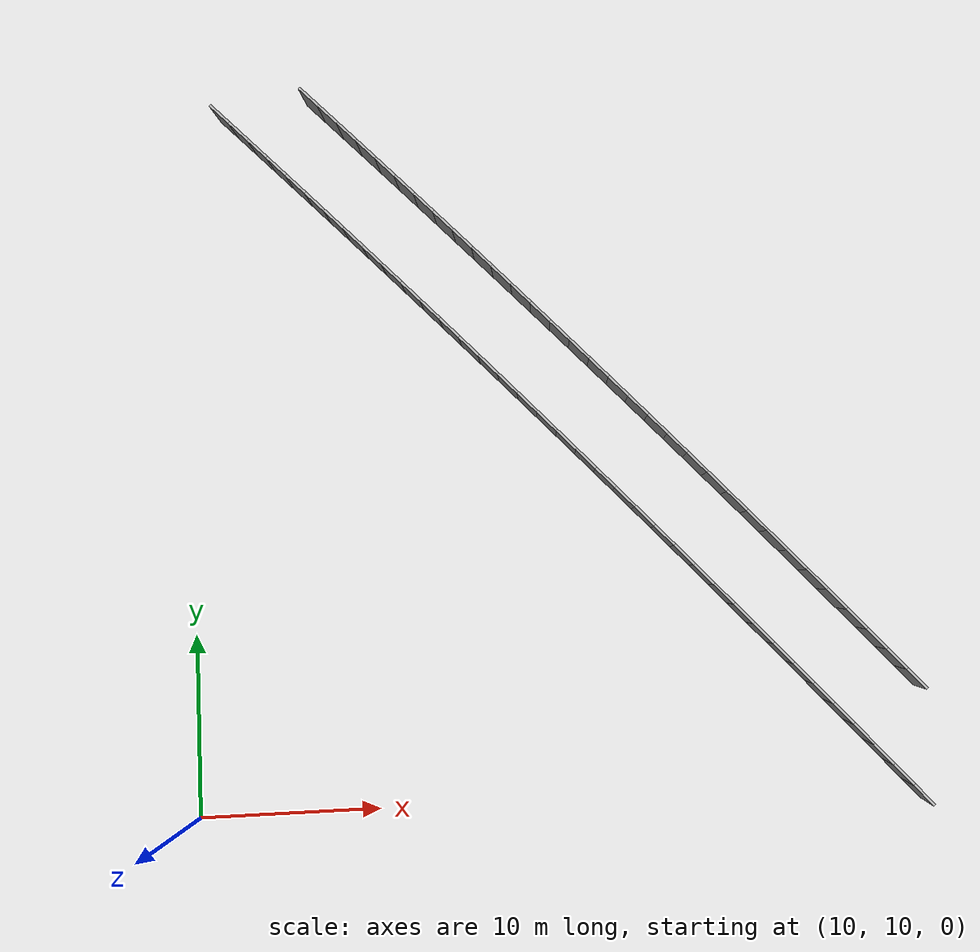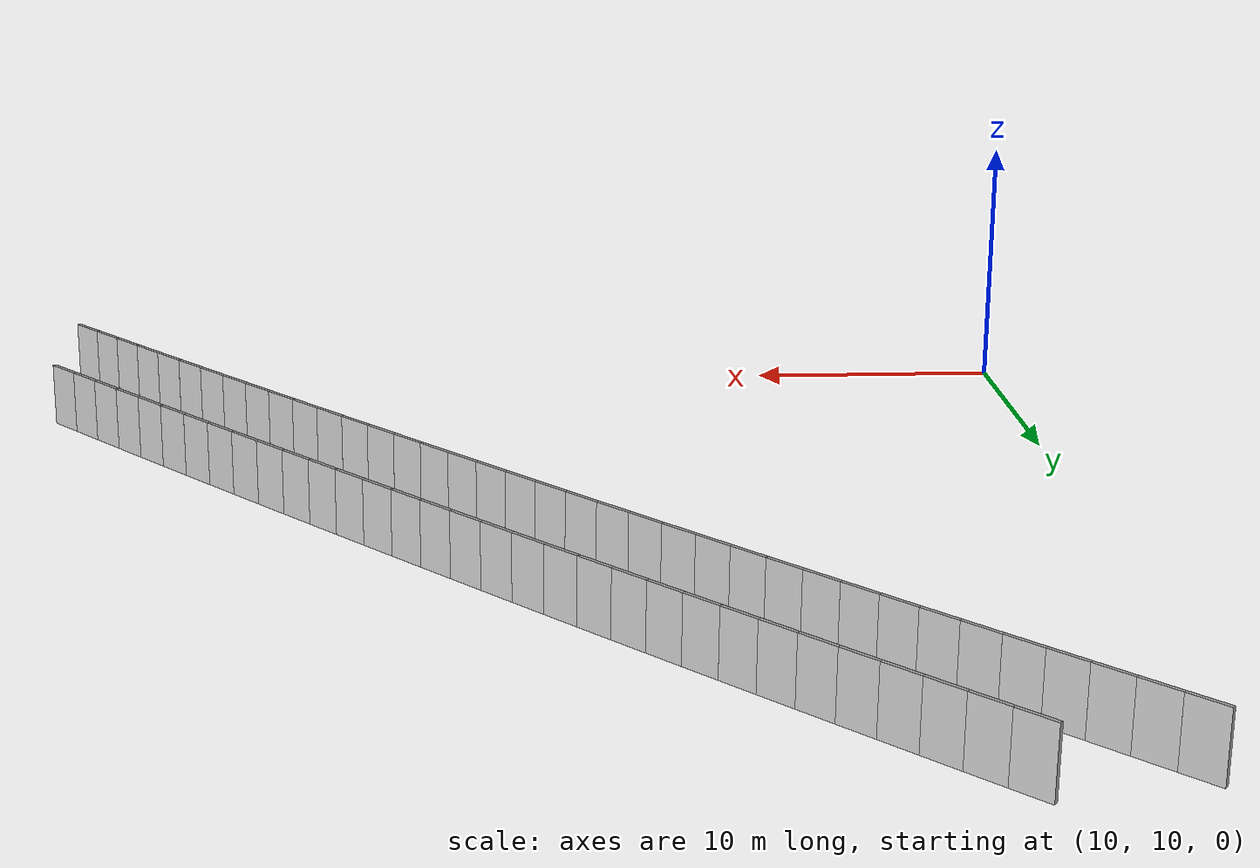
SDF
<?xml version="1.0" ?>
<sdf version="1.6">
  <model name="sps_4040">
    <pose frame="">0 0 0 0 -0 0</pose>
    <static>1</static>
    <self_collide>0</self_collide>
    <allow_auto_disable>0</allow_auto_disable>
    <link name="Wall10377">
      <kinematic>0</kinematic>
      <gravity>1</gravity>
      <self_collide>0</self_collide>
      <collision name="collision">
        <geometry>
          <box>
            <size>1.49638 0.15 2.5</size>
          </box>
        </geometry>
        <pose frame="">0 0 0 0 -0 0</pose>
      </collision>
      <visual name="visual">
        <geometry>
          <box>
            <size>1.49638 0.15 2.5</size>
          </box>
        </geometry>
        <pose frame="">0 0 0 0 -0 0</pose>
        <cast_shadows>1</cast_shadows>
        <transparency>0.0</transparency>
      </visual>
      <pose frame="">49.278 9.73091 1.25 0 -0 2.29178</pose>
    </link>
    <link name="Wall10378">
      <kinematic>0</kinematic>
      <gravity>1</gravity>
      <self_collide>0</self_collide>
      <collision name="collision">
        <geometry>
          <box>
            <size>1.49661 0.15 2.5</size>
          </box>
        </geometry>
        <pose frame="">0 0 0 0 -0 0</pose>
      </collision>
      <visual name="visual">
        <geometry>
          <box>
            <size>1.49661 0.15 2.5</size>
          </box>
        </geometry>
        <pose frame="">0 0 0 0 -0 0</pose>
        <cast_shadows>1</cast_shadows>
        <transparency>0.0</transparency>
      </visual>
      <pose frame="">48.2892 10.8542 1.25 0 -0 2.29343</pose>
    </link>
    <link name="Wall10379">
      <kinematic>0</kinematic>
      <gravity>1</gravity>
      <self_collide>0</self_collide>
      <collision name="collision">
        <geometry>
          <box>
            <size>1.49652 0.15 2.5</size>
          </box>
        </geometry>
        <pose frame="">0 0 0 0 -0 0</pose>
      </collision>
      <visual name="visual">
        <geometry>
          <box>
            <size>1.49652 0.15 2.5</size>
          </box>
        </geometry>
        <pose frame="">0 0 0 0 -0 0</pose>
        <cast_shadows>1</cast_shadows>
        <transparency>0.0</transparency>
      </visual>
      <pose frame="">47.2986 11.976 1.25 0 -0 2.2949</pose>
    </link>
    <link name="Wall10380">
      <kinematic>0</kinematic>
      <gravity>1</gravity>
      <self_collide>0</self_collide>
      <collision name="collision">
        <geometry>
          <box>
            <size>1.4965 0.15 2.5</size>
          </box>
        </geometry>
        <pose frame="">0 0 0 0 -0 0</pose>
      </collision>
      <visual name="visual">
        <geometry>
          <box>
            <size>1.4965 0.15 2.5</size>
          </box>
        </geometry>
        <pose frame="">0 0 0 0 -0 0</pose>
        <cast_shadows>1</cast_shadows>
        <transparency>0.0</transparency>
      </visual>
      <pose frame="">46.3063 13.0962 1.25 0 -0 2.29655</pose>
    </link>
    <link name="Wall10381">
      <kinematic>0</kinematic>
      <gravity>1</gravity>
      <self_collide>0</self_collide>
      <collision name="collision">
        <geometry>
          <box>
            <size>1.49649 0.15 2.5</size>
          </box>
        </geometry>
        <pose frame="">0 0 0 0 -0 0</pose>
      </collision>
      <visual name="visual">
        <geometry>
          <box>
            <size>1.49649 0.15 2.5</size>
          </box>
        </geometry>
        <pose frame="">0 0 0 0 -0 0</pose>
        <cast_shadows>1</cast_shadows>
        <transparency>0.0</transparency>
      </visual>
      <pose frame="">45.3122 14.2148 1.25 0 -0 2.29814</pose>
    </link>
    <link name="Wall10382">
      <kinematic>0</kinematic>
      <gravity>1</gravity>
      <self_collide>0</self_collide>
      <collision name="collision">
        <geometry>
          <box>
            <size>1.49621 0.15 2.5</size>
          </box>
        </geometry>
        <pose frame="">0 0 0 0 -0 0</pose>
      </collision>
      <visual name="visual">
        <geometry>
          <box>
            <size>1.49621 0.15 2.5</size>
          </box>
        </geometry>
        <pose frame="">0 0 0 0 -0 0</pose>
        <cast_shadows>1</cast_shadows>
        <transparency>0.0</transparency>
      </visual>
      <pose frame="">44.3162 15.3316 1.25 0 -0 2.29995</pose>
    </link>
    <link name="Wall10383">
      <kinematic>0</kinematic>
      <gravity>1</gravity>
      <self_collide>0</self_collide>
      <collision name="collision">
        <geometry>
          <box>
            <size>1.49666 0.15 2.5</size>
          </box>
        </geometry>
        <pose frame="">0 0 0 0 -0 0</pose>
      </collision>
      <visual name="visual">
        <geometry>
          <box>
            <size>1.49666 0.15 2.5</size>
          </box>
        </geometry>
        <pose frame="">0 0 0 0 -0 0</pose>
        <cast_shadows>1</cast_shadows>
        <transparency>0.0</transparency>
      </visual>
      <pose frame="">43.3185 16.4469 1.25 0 -0 2.30126</pose>
    </link>
    <link name="Wall10384">
      <kinematic>0</kinematic>
      <gravity>1</gravity>
      <self_collide>0</self_collide>
      <collision name="collision">
        <geometry>
          <box>
            <size>1.49636 0.15 2.5</size>
          </box>
        </geometry>
        <pose frame="">0 0 0 0 -0 0</pose>
      </collision>
      <visual name="visual">
        <geometry>
          <box>
            <size>1.49636 0.15 2.5</size>
          </box>
        </geometry>
        <pose frame="">0 0 0 0 -0 0</pose>
        <cast_shadows>1</cast_shadows>
        <transparency>0.0</transparency>
      </visual>
      <pose frame="">42.3191 17.5608 1.25 0 -0 2.30287</pose>
    </link>
    <link name="Wall10385">
      <kinematic>0</kinematic>
      <gravity>1</gravity>
      <self_collide>0</self_collide>
      <collision name="collision">
        <geometry>
          <box>
            <size>1.49658 0.15 2.5</size>
          </box>
        </geometry>
        <pose frame="">0 0 0 0 -0 0</pose>
      </collision>
      <visual name="visual">
        <geometry>
          <box>
            <size>1.49658 0.15 2.5</size>
          </box>
        </geometry>
        <pose frame="">0 0 0 0 -0 0</pose>
        <cast_shadows>1</cast_shadows>
        <transparency>0.0</transparency>
      </visual>
      <pose frame="">41.318 18.6731 1.25 0 -0 2.30438</pose>
    </link>
    <link name="Wall10386">
      <kinematic>0</kinematic>
      <gravity>1</gravity>
      <self_collide>0</self_collide>
      <collision name="collision">
        <geometry>
          <box>
            <size>1.49655 0.15 2.5</size>
          </box>
        </geometry>
        <pose frame="">0 0 0 0 -0 0</pose>
      </collision>
      <visual name="visual">
        <geometry>
          <box>
            <size>1.49655 0.15 2.5</size>
          </box>
        </geometry>
        <pose frame="">0 0 0 0 -0 0</pose>
        <cast_shadows>1</cast_shadows>
        <transparency>0.0</transparency>
      </visual>
      <pose frame="">40.3151 19.7839 1.25 0 -0 2.30599</pose>
    </link>
    <link name="Wall10387">
      <kinematic>0</kinematic>
      <gravity>1</gravity>
      <self_collide>0</self_collide>
      <collision name="collision">
        <geometry>
          <box>
            <size>1.49646 0.15 2.5</size>
          </box>
        </geometry>
        <pose frame="">0 0 0 0 -0 0</pose>
      </collision>
      <visual name="visual">
        <geometry>
          <box>
            <size>1.49646 0.15 2.5</size>
          </box>
        </geometry>
        <pose frame="">0 0 0 0 -0 0</pose>
        <cast_shadows>1</cast_shadows>
        <transparency>0.0</transparency>
      </visual>
      <pose frame="">39.3104 20.893 1.25 0 -0 2.3077</pose>
    </link>
    <link name="Wall10388">
      <kinematic>0</kinematic>
      <gravity>1</gravity>
      <self_collide>0</self_collide>
      <collision name="collision">
        <geometry>
          <box>
            <size>1.49662 0.15 2.5</size>
          </box>
        </geometry>
        <pose frame="">0 0 0 0 -0 0</pose>
      </collision>
      <visual name="visual">
        <geometry>
          <box>
            <size>1.49662 0.15 2.5</size>
          </box>
        </geometry>
        <pose frame="">0 0 0 0 -0 0</pose>
        <cast_shadows>1</cast_shadows>
        <transparency>0.0</transparency>
      </visual>
      <pose frame="">38.3039 22.0005 1.25 0 -0 2.3092</pose>
    </link>
    <link name="Wall10389">
      <kinematic>0</kinematic>
      <gravity>1</gravity>
      <self_collide>0</self_collide>
      <collision name="collision">
        <geometry>
          <box>
            <size>1.4965 0.15 2.5</size>
          </box>
        </geometry>
        <pose frame="">0 0 0 0 -0 0</pose>
      </collision>
      <visual name="visual">
        <geometry>
          <box>
            <size>1.4965 0.15 2.5</size>
          </box>
        </geometry>
        <pose frame="">0 0 0 0 -0 0</pose>
        <cast_shadows>1</cast_shadows>
        <transparency>0.0</transparency>
      </visual>
      <pose frame="">37.2956 23.1064 1.25 0 -0 2.31093</pose>
    </link>
    <link name="Wall10390">
      <kinematic>0</kinematic>
      <gravity>1</gravity>
      <self_collide>0</self_collide>
      <collision name="collision">
        <geometry>
          <box>
            <size>1.49653 0.15 2.5</size>
          </box>
        </geometry>
        <pose frame="">0 0 0 0 -0 0</pose>
      </collision>
      <visual name="visual">
        <geometry>
          <box>
            <size>1.49653 0.15 2.5</size>
          </box>
        </geometry>
        <pose frame="">0 0 0 0 -0 0</pose>
        <cast_shadows>1</cast_shadows>
        <transparency>0.0</transparency>
      </visual>
      <pose frame="">36.2856 24.2107 1.25 0 -0 2.31235</pose>
    </link>
    <link name="Wall10391">
      <kinematic>0</kinematic>
      <gravity>1</gravity>
      <self_collide>0</self_collide>
      <collision name="collision">
        <geometry>
          <box>
            <size>1.49642 0.15 2.5</size>
          </box>
        </geometry>
        <pose frame="">0 0 0 0 -0 0</pose>
      </collision>
      <visual name="visual">
        <geometry>
          <box>
            <size>1.49642 0.15 2.5</size>
          </box>
        </geometry>
        <pose frame="">0 0 0 0 -0 0</pose>
        <cast_shadows>1</cast_shadows>
        <transparency>0.0</transparency>
      </visual>
      <pose frame="">35.2739 25.3134 1.25 0 -0 2.31402</pose>
    </link>
    <link name="Wall10392">
      <kinematic>0</kinematic>
      <gravity>1</gravity>
      <self_collide>0</self_collide>
      <collision name="collision">
        <geometry>
          <box>
            <size>1.49651 0.15 2.5</size>
          </box>
        </geometry>
        <pose frame="">0 0 0 0 -0 0</pose>
      </collision>
      <visual name="visual">
        <geometry>
          <box>
            <size>1.49651 0.15 2.5</size>
          </box>
        </geometry>
        <pose frame="">0 0 0 0 -0 0</pose>
        <cast_shadows>1</cast_shadows>
        <transparency>0.0</transparency>
      </visual>
      <pose frame="">34.2606 26.4145 1.25 0 -0 2.31546</pose>
    </link>
    <link name="Wall10393">
      <kinematic>0</kinematic>
      <gravity>1</gravity>
      <self_collide>0</self_collide>
      <collision name="collision">
        <geometry>
          <box>
            <size>1.49653 0.15 2.5</size>
          </box>
        </geometry>
        <pose frame="">0 0 0 0 -0 0</pose>
      </collision>
      <visual name="visual">
        <geometry>
          <box>
            <size>1.49653 0.15 2.5</size>
          </box>
        </geometry>
        <pose frame="">0 0 0 0 -0 0</pose>
        <cast_shadows>1</cast_shadows>
        <transparency>0.0</transparency>
      </visual>
      <pose frame="">33.2454 27.514 1.25 0 -0 2.31722</pose>
    </link>
    <link name="Wall10394">
      <kinematic>0</kinematic>
      <gravity>1</gravity>
      <self_collide>0</self_collide>
      <collision name="collision">
        <geometry>
          <box>
            <size>1.49658 0.15 2.5</size>
          </box>
        </geometry>
        <pose frame="">0 0 0 0 -0 0</pose>
      </collision>
      <visual name="visual">
        <geometry>
          <box>
            <size>1.49658 0.15 2.5</size>
          </box>
        </geometry>
        <pose frame="">0 0 0 0 -0 0</pose>
        <cast_shadows>1</cast_shadows>
        <transparency>0.0</transparency>
      </visual>
      <pose frame="">32.2284 28.6119 1.25 0 -0 2.3187</pose>
    </link>
    <link name="Wall10395">
      <kinematic>0</kinematic>
      <gravity>1</gravity>
      <self_collide>0</self_collide>
      <collision name="collision">
        <geometry>
          <box>
            <size>1.49636 0.15 2.5</size>
          </box>
        </geometry>
        <pose frame="">0 0 0 0 -0 0</pose>
      </collision>
      <visual name="visual">
        <geometry>
          <box>
            <size>1.49636 0.15 2.5</size>
          </box>
        </geometry>
        <pose frame="">0 0 0 0 -0 0</pose>
        <cast_shadows>1</cast_shadows>
        <transparency>0.0</transparency>
      </visual>
      <pose frame="">31.2097 29.7082 1.25 0 -0 2.32028</pose>
    </link>
    <link name="Wall10396">
      <kinematic>0</kinematic>
      <gravity>1</gravity>
      <self_collide>0</self_collide>
      <collision name="collision">
        <geometry>
          <box>
            <size>1.49666 0.15 2.5</size>
          </box>
        </geometry>
        <pose frame="">0 0 0 0 -0 0</pose>
      </collision>
      <visual name="visual">
        <geometry>
          <box>
            <size>1.49666 0.15 2.5</size>
          </box>
        </geometry>
        <pose frame="">0 0 0 0 -0 0</pose>
        <cast_shadows>1</cast_shadows>
        <transparency>0.0</transparency>
      </visual>
      <pose frame="">30.1894 30.8029 1.25 0 -0 2.32187</pose>
    </link>
    <link name="Wall10397">
      <kinematic>0</kinematic>
      <gravity>1</gravity>
      <self_collide>0</self_collide>
      <collision name="collision">
        <geometry>
          <box>
            <size>1.49637 0.15 2.5</size>
          </box>
        </geometry>
        <pose frame="">0 0 0 0 -0 0</pose>
      </collision>
      <visual name="visual">
        <geometry>
          <box>
            <size>1.49637 0.15 2.5</size>
          </box>
        </geometry>
        <pose frame="">0 0 0 0 -0 0</pose>
        <cast_shadows>1</cast_shadows>
        <transparency>0.0</transparency>
      </visual>
      <pose frame="">29.1673 31.896 1.25 0 -0 2.3234</pose>
    </link>
    <link name="Wall10398">
      <kinematic>0</kinematic>
      <gravity>1</gravity>
      <self_collide>0</self_collide>
      <collision name="collision">
        <geometry>
          <box>
            <size>1.49651 0.15 2.5</size>
          </box>
        </geometry>
        <pose frame="">0 0 0 0 -0 0</pose>
      </collision>
      <visual name="visual">
        <geometry>
          <box>
            <size>1.49651 0.15 2.5</size>
          </box>
        </geometry>
        <pose frame="">0 0 0 0 -0 0</pose>
        <cast_shadows>1</cast_shadows>
        <transparency>0.0</transparency>
      </visual>
      <pose frame="">28.1435 32.9874 1.25 0 -0 2.3251</pose>
    </link>
    <link name="Wall10399">
      <kinematic>0</kinematic>
      <gravity>1</gravity>
      <self_collide>0</self_collide>
      <collision name="collision">
        <geometry>
          <box>
            <size>1.49652 0.15 2.5</size>
          </box>
        </geometry>
        <pose frame="">0 0 0 0 -0 0</pose>
      </collision>
      <visual name="visual">
        <geometry>
          <box>
            <size>1.49652 0.15 2.5</size>
          </box>
        </geometry>
        <pose frame="">0 0 0 0 -0 0</pose>
        <cast_shadows>1</cast_shadows>
        <transparency>0.0</transparency>
      </visual>
      <pose frame="">27.1179 34.0772 1.25 0 -0 2.3266</pose>
    </link>
    <link name="Wall10400">
      <kinematic>0</kinematic>
      <gravity>1</gravity>
      <self_collide>0</self_collide>
      <collision name="collision">
        <geometry>
          <box>
            <size>1.49636 0.15 2.5</size>
          </box>
        </geometry>
        <pose frame="">0 0 0 0 -0 0</pose>
      </collision>
      <visual name="visual">
        <geometry>
          <box>
            <size>1.49636 0.15 2.5</size>
          </box>
        </geometry>
        <pose frame="">0 0 0 0 -0 0</pose>
        <cast_shadows>1</cast_shadows>
        <transparency>0.0</transparency>
      </visual>
      <pose frame="">26.0905 35.1653 1.25 0 -0 2.32833</pose>
    </link>
    <link name="Wall10401">
      <kinematic>0</kinematic>
      <gravity>1</gravity>
      <self_collide>0</self_collide>
      <collision name="collision">
        <geometry>
          <box>
            <size>1.49674 0.15 2.5</size>
          </box>
        </geometry>
        <pose frame="">0 0 0 0 -0 0</pose>
      </collision>
      <visual name="visual">
        <geometry>
          <box>
            <size>1.49674 0.15 2.5</size>
          </box>
        </geometry>
        <pose frame="">0 0 0 0 -0 0</pose>
        <cast_shadows>1</cast_shadows>
        <transparency>0.0</transparency>
      </visual>
      <pose frame="">25.0615 36.2519 1.25 0 -0 2.32972</pose>
    </link>
    <link name="Wall10402">
      <kinematic>0</kinematic>
      <gravity>1</gravity>
      <self_collide>0</self_collide>
      <collision name="collision">
        <geometry>
          <box>
            <size>1.49646 0.15 2.5</size>
          </box>
        </geometry>
        <pose frame="">0 0 0 0 -0 0</pose>
      </collision>
      <visual name="visual">
        <geometry>
          <box>
            <size>1.49646 0.15 2.5</size>
          </box>
        </geometry>
        <pose frame="">0 0 0 0 -0 0</pose>
        <cast_shadows>1</cast_shadows>
        <transparency>0.0</transparency>
      </visual>
      <pose frame="">24.0307 37.3369 1.25 0 -0 2.33142</pose>
    </link>
    <link name="Wall10403">
      <kinematic>0</kinematic>
      <gravity>1</gravity>
      <self_collide>0</self_collide>
      <collision name="collision">
        <geometry>
          <box>
            <size>1.49662 0.15 2.5</size>
          </box>
        </geometry>
        <pose frame="">0 0 0 0 -0 0</pose>
      </collision>
      <visual name="visual">
        <geometry>
          <box>
            <size>1.49662 0.15 2.5</size>
          </box>
        </geometry>
        <pose frame="">0 0 0 0 -0 0</pose>
        <cast_shadows>1</cast_shadows>
        <transparency>0.0</transparency>
      </visual>
      <pose frame="">22.9982 38.4202 1.25 0 -0 2.33295</pose>
    </link>
    <link name="Wall10404">
      <kinematic>0</kinematic>
      <gravity>1</gravity>
      <self_collide>0</self_collide>
      <collision name="collision">
        <geometry>
          <box>
            <size>1.49661 0.15 2.5</size>
          </box>
        </geometry>
        <pose frame="">0 0 0 0 -0 0</pose>
      </collision>
      <visual name="visual">
        <geometry>
          <box>
            <size>1.49661 0.15 2.5</size>
          </box>
        </geometry>
        <pose frame="">0 0 0 0 -0 0</pose>
        <cast_shadows>1</cast_shadows>
        <transparency>0.0</transparency>
      </visual>
      <pose frame="">21.964 39.502 1.25 0 -0 2.33448</pose>
    </link>
    <link name="Wall10405">
      <kinematic>0</kinematic>
      <gravity>1</gravity>
      <self_collide>0</self_collide>
      <collision name="collision">
        <geometry>
          <box>
            <size>1.49656 0.15 2.5</size>
          </box>
        </geometry>
        <pose frame="">0 0 0 0 -0 0</pose>
      </collision>
      <visual name="visual">
        <geometry>
          <box>
            <size>1.49656 0.15 2.5</size>
          </box>
        </geometry>
        <pose frame="">0 0 0 0 -0 0</pose>
        <cast_shadows>1</cast_shadows>
        <transparency>0.0</transparency>
      </visual>
      <pose frame="">20.928 40.5821 1.25 0 -0 2.33615</pose>
    </link>
    <link name="Wall10406">
      <kinematic>0</kinematic>
      <gravity>1</gravity>
      <self_collide>0</self_collide>
      <collision name="collision">
        <geometry>
          <box>
            <size>1.49634 0.15 2.5</size>
          </box>
        </geometry>
        <pose frame="">0 0 0 0 -0 0</pose>
      </collision>
      <visual name="visual">
        <geometry>
          <box>
            <size>1.49634 0.15 2.5</size>
          </box>
        </geometry>
        <pose frame="">0 0 0 0 -0 0</pose>
        <cast_shadows>1</cast_shadows>
        <transparency>0.0</transparency>
      </visual>
      <pose frame="">19.8904 41.6604 1.25 0 -0 2.33776</pose>
    </link>
    <link name="Wall10407">
      <kinematic>0</kinematic>
      <gravity>1</gravity>
      <self_collide>0</self_collide>
      <collision name="collision">
        <geometry>
          <box>
            <size>1.49656 0.15 2.5</size>
          </box>
        </geometry>
        <pose frame="">0 0 0 0 -0 0</pose>
      </collision>
      <visual name="visual">
        <geometry>
          <box>
            <size>1.49656 0.15 2.5</size>
          </box>
        </geometry>
        <pose frame="">0 0 0 0 -0 0</pose>
        <cast_shadows>1</cast_shadows>
        <transparency>0.0</transparency>
      </visual>
      <pose frame="">18.8512 42.7371 1.25 0 -0 2.33927</pose>
    </link>
    <link name="Wall10408">
      <kinematic>0</kinematic>
      <gravity>1</gravity>
      <self_collide>0</self_collide>
      <collision name="collision">
        <geometry>
          <box>
            <size>1.49643 0.15 2.5</size>
          </box>
        </geometry>
        <pose frame="">0 0 0 0 -0 0</pose>
      </collision>
      <visual name="visual">
        <geometry>
          <box>
            <size>1.49643 0.15 2.5</size>
          </box>
        </geometry>
        <pose frame="">0 0 0 0 -0 0</pose>
        <cast_shadows>1</cast_shadows>
        <transparency>0.0</transparency>
      </visual>
      <pose frame="">17.8102 43.8122 1.25 0 -0 2.34088</pose>
    </link>
    <link name="Wall10409">
      <kinematic>0</kinematic>
      <gravity>1</gravity>
      <self_collide>0</self_collide>
      <collision name="collision">
        <geometry>
          <box>
            <size>1.4964 0.15 2.5</size>
          </box>
        </geometry>
        <pose frame="">0 0 0 0 -0 0</pose>
      </collision>
      <visual name="visual">
        <geometry>
          <box>
            <size>1.4964 0.15 2.5</size>
          </box>
        </geometry>
        <pose frame="">0 0 0 0 -0 0</pose>
        <cast_shadows>1</cast_shadows>
        <transparency>0.0</transparency>
      </visual>
      <pose frame="">16.7674 44.8855 1.25 0 -0 2.34261</pose>
    </link>
    <link name="Wall10410">
      <kinematic>0</kinematic>
      <gravity>1</gravity>
      <self_collide>0</self_collide>
      <collision name="collision">
        <geometry>
          <box>
            <size>1.49658 0.15 2.5</size>
          </box>
        </geometry>
        <pose frame="">0 0 0 0 -0 0</pose>
      </collision>
      <visual name="visual">
        <geometry>
          <box>
            <size>1.49658 0.15 2.5</size>
          </box>
        </geometry>
        <pose frame="">0 0 0 0 -0 0</pose>
        <cast_shadows>1</cast_shadows>
        <transparency>0.0</transparency>
      </visual>
      <pose frame="">15.723 45.9572 1.25 0 -0 2.34408</pose>
    </link>
    <link name="Wall10411">
      <kinematic>0</kinematic>
      <gravity>1</gravity>
      <self_collide>0</self_collide>
      <collision name="collision">
        <geometry>
          <box>
            <size>1.4966 0.15 2.5</size>
          </box>
        </geometry>
        <pose frame="">0 0 0 0 -0 0</pose>
      </collision>
      <visual name="visual">
        <geometry>
          <box>
            <size>1.4966 0.15 2.5</size>
          </box>
        </geometry>
        <pose frame="">0 0 0 0 -0 0</pose>
        <cast_shadows>1</cast_shadows>
        <transparency>0.0</transparency>
      </visual>
      <pose frame="">14.6768 47.0274 1.25 0 -0 2.34561</pose>
    </link>
    <link name="Wall10412">
      <kinematic>0</kinematic>
      <gravity>1</gravity>
      <self_collide>0</self_collide>
      <collision name="collision">
        <geometry>
          <box>
            <size>1.49649 0.15 2.5</size>
          </box>
        </geometry>
        <pose frame="">0 0 0 0 -0 0</pose>
      </collision>
      <visual name="visual">
        <geometry>
          <box>
            <size>1.49649 0.15 2.5</size>
          </box>
        </geometry>
        <pose frame="">0 0 0 0 -0 0</pose>
        <cast_shadows>1</cast_shadows>
        <transparency>0.0</transparency>
      </visual>
      <pose frame="">13.629 48.0959 1.25 0 -0 2.34723</pose>
    </link>
    <link name="Wall10413">
      <kinematic>0</kinematic>
      <gravity>1</gravity>
      <self_collide>0</self_collide>
      <collision name="collision">
        <geometry>
          <box>
            <size>1.49638 0.15 2.5</size>
          </box>
        </geometry>
        <pose frame="">0 0 0 0 -0 0</pose>
      </collision>
      <visual name="visual">
        <geometry>
          <box>
            <size>1.49638 0.15 2.5</size>
          </box>
        </geometry>
        <pose frame="">0 0 0 0 -0 0</pose>
        <cast_shadows>1</cast_shadows>
        <transparency>0.0</transparency>
      </visual>
      <pose frame="">12.5795 49.1626 1.25 0 -0 2.3489</pose>
    </link>
    <link name="Wall10977">
      <kinematic>0</kinematic>
      <gravity>1</gravity>
      <self_collide>0</self_collide>
      <collision name="collision">
        <geometry>
          <box>
            <size>1.50316 0.15 2.5</size>
          </box>
        </geometry>
        <pose frame="">0 0 0 0 -0 0</pose>
      </collision>
      <visual name="visual">
        <geometry>
          <box>
            <size>1.50316 0.15 2.5</size>
          </box>
        </geometry>
        <pose frame="">0 0 0 0 -0 0</pose>
        <cast_shadows>1</cast_shadows>
        <transparency>0.0</transparency>
      </visual>
      <pose frame="">49.4026 15.8439 1.25 0 -0 2.29652</pose>
    </link>
    <link name="Wall10978">
      <kinematic>0</kinematic>
      <gravity>1</gravity>
      <self_collide>0</self_collide>
      <collision name="collision">
        <geometry>
          <box>
            <size>1.50302 0.15 2.5</size>
          </box>
        </geometry>
        <pose frame="">0 0 0 0 -0 0</pose>
      </collision>
      <visual name="visual">
        <geometry>
          <box>
            <size>1.50302 0.15 2.5</size>
          </box>
        </geometry>
        <pose frame="">0 0 0 0 -0 0</pose>
        <cast_shadows>1</cast_shadows>
        <transparency>0.0</transparency>
      </visual>
      <pose frame="">48.4041 16.9674 1.25 0 -0 2.29819</pose>
    </link>
    <link name="Wall10979">
      <kinematic>0</kinematic>
      <gravity>1</gravity>
      <self_collide>0</self_collide>
      <collision name="collision">
        <geometry>
          <box>
            <size>1.50302 0.15 2.5</size>
          </box>
        </geometry>
        <pose frame="">0 0 0 0 -0 0</pose>
      </collision>
      <visual name="visual">
        <geometry>
          <box>
            <size>1.50302 0.15 2.5</size>
          </box>
        </geometry>
        <pose frame="">0 0 0 0 -0 0</pose>
        <cast_shadows>1</cast_shadows>
        <transparency>0.0</transparency>
      </visual>
      <pose frame="">47.404 18.0893 1.25 0 -0 2.2996</pose>
    </link>
    <link name="Wall10980">
      <kinematic>0</kinematic>
      <gravity>1</gravity>
      <self_collide>0</self_collide>
      <collision name="collision">
        <geometry>
          <box>
            <size>1.50314 0.15 2.5</size>
          </box>
        </geometry>
        <pose frame="">0 0 0 0 -0 0</pose>
      </collision>
      <visual name="visual">
        <geometry>
          <box>
            <size>1.50314 0.15 2.5</size>
          </box>
        </geometry>
        <pose frame="">0 0 0 0 -0 0</pose>
        <cast_shadows>1</cast_shadows>
        <transparency>0.0</transparency>
      </visual>
      <pose frame="">46.402 19.2097 1.25 0 -0 2.30133</pose>
    </link>
    <link name="Wall10981">
      <kinematic>0</kinematic>
      <gravity>1</gravity>
      <self_collide>0</self_collide>
      <collision name="collision">
        <geometry>
          <box>
            <size>1.50306 0.15 2.5</size>
          </box>
        </geometry>
        <pose frame="">0 0 0 0 -0 0</pose>
      </collision>
      <visual name="visual">
        <geometry>
          <box>
            <size>1.50306 0.15 2.5</size>
          </box>
        </geometry>
        <pose frame="">0 0 0 0 -0 0</pose>
        <cast_shadows>1</cast_shadows>
        <transparency>0.0</transparency>
      </visual>
      <pose frame="">45.3982 20.3285 1.25 0 -0 2.30285</pose>
    </link>
    <link name="Wall10982">
      <kinematic>0</kinematic>
      <gravity>1</gravity>
      <self_collide>0</self_collide>
      <collision name="collision">
        <geometry>
          <box>
            <size>1.50311 0.15 2.5</size>
          </box>
        </geometry>
        <pose frame="">0 0 0 0 -0 0</pose>
      </collision>
      <visual name="visual">
        <geometry>
          <box>
            <size>1.50311 0.15 2.5</size>
          </box>
        </geometry>
        <pose frame="">0 0 0 0 -0 0</pose>
        <cast_shadows>1</cast_shadows>
        <transparency>0.0</transparency>
      </visual>
      <pose frame="">44.3926 21.4457 1.25 0 -0 2.3044</pose>
    </link>
    <link name="Wall10983">
      <kinematic>0</kinematic>
      <gravity>1</gravity>
      <self_collide>0</self_collide>
      <collision name="collision">
        <geometry>
          <box>
            <size>1.50302 0.15 2.5</size>
          </box>
        </geometry>
        <pose frame="">0 0 0 0 -0 0</pose>
      </collision>
      <visual name="visual">
        <geometry>
          <box>
            <size>1.50302 0.15 2.5</size>
          </box>
        </geometry>
        <pose frame="">0 0 0 0 -0 0</pose>
        <cast_shadows>1</cast_shadows>
        <transparency>0.0</transparency>
      </visual>
      <pose frame="">43.3853 22.5613 1.25 0 -0 2.30604</pose>
    </link>
    <link name="Wall10984">
      <kinematic>0</kinematic>
      <gravity>1</gravity>
      <self_collide>0</self_collide>
      <collision name="collision">
        <geometry>
          <box>
            <size>1.50299 0.15 2.5</size>
          </box>
        </geometry>
        <pose frame="">0 0 0 0 -0 0</pose>
      </collision>
      <visual name="visual">
        <geometry>
          <box>
            <size>1.50299 0.15 2.5</size>
          </box>
        </geometry>
        <pose frame="">0 0 0 0 -0 0</pose>
        <cast_shadows>1</cast_shadows>
        <transparency>0.0</transparency>
      </visual>
      <pose frame="">42.3762 23.6752 1.25 0 -0 2.3077</pose>
    </link>
    <link name="Wall10985">
      <kinematic>0</kinematic>
      <gravity>1</gravity>
      <self_collide>0</self_collide>
      <collision name="collision">
        <geometry>
          <box>
            <size>1.50309 0.15 2.5</size>
          </box>
        </geometry>
        <pose frame="">0 0 0 0 -0 0</pose>
      </collision>
      <visual name="visual">
        <geometry>
          <box>
            <size>1.50309 0.15 2.5</size>
          </box>
        </geometry>
        <pose frame="">0 0 0 0 -0 0</pose>
        <cast_shadows>1</cast_shadows>
        <transparency>0.0</transparency>
      </visual>
      <pose frame="">41.3653 24.7875 1.25 0 -0 2.30923</pose>
    </link>
    <link name="Wall10986">
      <kinematic>0</kinematic>
      <gravity>1</gravity>
      <self_collide>0</self_collide>
      <collision name="collision">
        <geometry>
          <box>
            <size>1.5032 0.15 2.5</size>
          </box>
        </geometry>
        <pose frame="">0 0 0 0 -0 0</pose>
      </collision>
      <visual name="visual">
        <geometry>
          <box>
            <size>1.5032 0.15 2.5</size>
          </box>
        </geometry>
        <pose frame="">0 0 0 0 -0 0</pose>
        <cast_shadows>1</cast_shadows>
        <transparency>0.0</transparency>
      </visual>
      <pose frame="">40.3527 25.8983 1.25 0 -0 2.31082</pose>
    </link>
    <link name="Wall10987">
      <kinematic>0</kinematic>
      <gravity>1</gravity>
      <self_collide>0</self_collide>
      <collision name="collision">
        <geometry>
          <box>
            <size>1.50287 0.15 2.5</size>
          </box>
        </geometry>
        <pose frame="">0 0 0 0 -0 0</pose>
      </collision>
      <visual name="visual">
        <geometry>
          <box>
            <size>1.50287 0.15 2.5</size>
          </box>
        </geometry>
        <pose frame="">0 0 0 0 -0 0</pose>
        <cast_shadows>1</cast_shadows>
        <transparency>0.0</transparency>
      </visual>
      <pose frame="">39.3382 27.0074 1.25 0 -0 2.31244</pose>
    </link>
    <link name="Wall10988">
      <kinematic>0</kinematic>
      <gravity>1</gravity>
      <self_collide>0</self_collide>
      <collision name="collision">
        <geometry>
          <box>
            <size>1.50308 0.15 2.5</size>
          </box>
        </geometry>
        <pose frame="">0 0 0 0 -0 0</pose>
      </collision>
      <visual name="visual">
        <geometry>
          <box>
            <size>1.50308 0.15 2.5</size>
          </box>
        </geometry>
        <pose frame="">0 0 0 0 -0 0</pose>
        <cast_shadows>1</cast_shadows>
        <transparency>0.0</transparency>
      </visual>
      <pose frame="">38.3222 28.1149 1.25 0 -0 2.31392</pose>
    </link>
    <link name="Wall10989">
      <kinematic>0</kinematic>
      <gravity>1</gravity>
      <self_collide>0</self_collide>
      <collision name="collision">
        <geometry>
          <box>
            <size>1.50315 0.15 2.5</size>
          </box>
        </geometry>
        <pose frame="">0 0 0 0 -0 0</pose>
      </collision>
      <visual name="visual">
        <geometry>
          <box>
            <size>1.50315 0.15 2.5</size>
          </box>
        </geometry>
        <pose frame="">0 0 0 0 -0 0</pose>
        <cast_shadows>1</cast_shadows>
        <transparency>0.0</transparency>
      </visual>
      <pose frame="">37.3043 29.2209 1.25 0 -0 2.31553</pose>
    </link>
    <link name="Wall10990">
      <kinematic>0</kinematic>
      <gravity>1</gravity>
      <self_collide>0</self_collide>
      <collision name="collision">
        <geometry>
          <box>
            <size>1.50306 0.15 2.5</size>
          </box>
        </geometry>
        <pose frame="">0 0 0 0 -0 0</pose>
      </collision>
      <visual name="visual">
        <geometry>
          <box>
            <size>1.50306 0.15 2.5</size>
          </box>
        </geometry>
        <pose frame="">0 0 0 0 -0 0</pose>
        <cast_shadows>1</cast_shadows>
        <transparency>0.0</transparency>
      </visual>
      <pose frame="">36.2847 30.3253 1.25 0 -0 2.31708</pose>
    </link>
    <link name="Wall10991">
      <kinematic>0</kinematic>
      <gravity>1</gravity>
      <self_collide>0</self_collide>
      <collision name="collision">
        <geometry>
          <box>
            <size>1.50309 0.15 2.5</size>
          </box>
        </geometry>
        <pose frame="">0 0 0 0 -0 0</pose>
      </collision>
      <visual name="visual">
        <geometry>
          <box>
            <size>1.50309 0.15 2.5</size>
          </box>
        </geometry>
        <pose frame="">0 0 0 0 -0 0</pose>
        <cast_shadows>1</cast_shadows>
        <transparency>0.0</transparency>
      </visual>
      <pose frame="">35.2632 31.428 1.25 0 -0 2.31883</pose>
    </link>
    <link name="Wall10992">
      <kinematic>0</kinematic>
      <gravity>1</gravity>
      <self_collide>0</self_collide>
      <collision name="collision">
        <geometry>
          <box>
            <size>1.50301 0.15 2.5</size>
          </box>
        </geometry>
        <pose frame="">0 0 0 0 -0 0</pose>
      </collision>
      <visual name="visual">
        <geometry>
          <box>
            <size>1.50301 0.15 2.5</size>
          </box>
        </geometry>
        <pose frame="">0 0 0 0 -0 0</pose>
        <cast_shadows>1</cast_shadows>
        <transparency>0.0</transparency>
      </visual>
      <pose frame="">34.24 32.529 1.25 0 -0 2.32032</pose>
    </link>
    <link name="Wall10993">
      <kinematic>0</kinematic>
      <gravity>1</gravity>
      <self_collide>0</self_collide>
      <collision name="collision">
        <geometry>
          <box>
            <size>1.50318 0.15 2.5</size>
          </box>
        </geometry>
        <pose frame="">0 0 0 0 -0 0</pose>
      </collision>
      <visual name="visual">
        <geometry>
          <box>
            <size>1.50318 0.15 2.5</size>
          </box>
        </geometry>
        <pose frame="">0 0 0 0 -0 0</pose>
        <cast_shadows>1</cast_shadows>
        <transparency>0.0</transparency>
      </visual>
      <pose frame="">33.2151 33.6285 1.25 0 -0 2.32188</pose>
    </link>
    <link name="Wall10994">
      <kinematic>0</kinematic>
      <gravity>1</gravity>
      <self_collide>0</self_collide>
      <collision name="collision">
        <geometry>
          <box>
            <size>1.50302 0.15 2.5</size>
          </box>
        </geometry>
        <pose frame="">0 0 0 0 -0 0</pose>
      </collision>
      <visual name="visual">
        <geometry>
          <box>
            <size>1.50302 0.15 2.5</size>
          </box>
        </geometry>
        <pose frame="">0 0 0 0 -0 0</pose>
        <cast_shadows>1</cast_shadows>
        <transparency>0.0</transparency>
      </visual>
      <pose frame="">32.1885 34.7264 1.25 0 -0 2.32343</pose>
    </link>
    <link name="Wall10995">
      <kinematic>0</kinematic>
      <gravity>1</gravity>
      <self_collide>0</self_collide>
      <collision name="collision">
        <geometry>
          <box>
            <size>1.50303 0.15 2.5</size>
          </box>
        </geometry>
        <pose frame="">0 0 0 0 -0 0</pose>
      </collision>
      <visual name="visual">
        <geometry>
          <box>
            <size>1.50303 0.15 2.5</size>
          </box>
        </geometry>
        <pose frame="">0 0 0 0 -0 0</pose>
        <cast_shadows>1</cast_shadows>
        <transparency>0.0</transparency>
      </visual>
      <pose frame="">31.1602 35.8226 1.25 0 -0 2.32503</pose>
    </link>
    <link name="Wall10996">
      <kinematic>0</kinematic>
      <gravity>1</gravity>
      <self_collide>0</self_collide>
      <collision name="collision">
        <geometry>
          <box>
            <size>1.50295 0.15 2.5</size>
          </box>
        </geometry>
        <pose frame="">0 0 0 0 -0 0</pose>
      </collision>
      <visual name="visual">
        <geometry>
          <box>
            <size>1.50295 0.15 2.5</size>
          </box>
        </geometry>
        <pose frame="">0 0 0 0 -0 0</pose>
        <cast_shadows>1</cast_shadows>
        <transparency>0.0</transparency>
      </visual>
      <pose frame="">30.1301 36.9171 1.25 0 -0 2.32676</pose>
    </link>
    <link name="Wall10997">
      <kinematic>0</kinematic>
      <gravity>1</gravity>
      <self_collide>0</self_collide>
      <collision name="collision">
        <geometry>
          <box>
            <size>1.50319 0.15 2.5</size>
          </box>
        </geometry>
        <pose frame="">0 0 0 0 -0 0</pose>
      </collision>
      <visual name="visual">
        <geometry>
          <box>
            <size>1.50319 0.15 2.5</size>
          </box>
        </geometry>
        <pose frame="">0 0 0 0 -0 0</pose>
        <cast_shadows>1</cast_shadows>
        <transparency>0.0</transparency>
      </visual>
      <pose frame="">29.0983 38.01 1.25 0 -0 2.32823</pose>
    </link>
    <link name="Wall10998">
      <kinematic>0</kinematic>
      <gravity>1</gravity>
      <self_collide>0</self_collide>
      <collision name="collision">
        <geometry>
          <box>
            <size>1.50313 0.15 2.5</size>
          </box>
        </geometry>
        <pose frame="">0 0 0 0 -0 0</pose>
      </collision>
      <visual name="visual">
        <geometry>
          <box>
            <size>1.50313 0.15 2.5</size>
          </box>
        </geometry>
        <pose frame="">0 0 0 0 -0 0</pose>
        <cast_shadows>1</cast_shadows>
        <transparency>0.0</transparency>
      </visual>
      <pose frame="">28.0647 39.1014 1.25 0 -0 2.32978</pose>
    </link>
    <link name="Wall10999">
      <kinematic>0</kinematic>
      <gravity>1</gravity>
      <self_collide>0</self_collide>
      <collision name="collision">
        <geometry>
          <box>
            <size>1.50306 0.15 2.5</size>
          </box>
        </geometry>
        <pose frame="">0 0 0 0 -0 0</pose>
      </collision>
      <visual name="visual">
        <geometry>
          <box>
            <size>1.50306 0.15 2.5</size>
          </box>
        </geometry>
        <pose frame="">0 0 0 0 -0 0</pose>
        <cast_shadows>1</cast_shadows>
        <transparency>0.0</transparency>
      </visual>
      <pose frame="">27.0293 40.1911 1.25 0 -0 2.33144</pose>
    </link>
    <link name="Wall11000">
      <kinematic>0</kinematic>
      <gravity>1</gravity>
      <self_collide>0</self_collide>
      <collision name="collision">
        <geometry>
          <box>
            <size>1.50301 0.15 2.5</size>
          </box>
        </geometry>
        <pose frame="">0 0 0 0 -0 0</pose>
      </collision>
      <visual name="visual">
        <geometry>
          <box>
            <size>1.50301 0.15 2.5</size>
          </box>
        </geometry>
        <pose frame="">0 0 0 0 -0 0</pose>
        <cast_shadows>1</cast_shadows>
        <transparency>0.0</transparency>
      </visual>
      <pose frame="">25.9924 41.2791 1.25 0 -0 2.33293</pose>
    </link>
    <link name="Wall11001">
      <kinematic>0</kinematic>
      <gravity>1</gravity>
      <self_collide>0</self_collide>
      <collision name="collision">
        <geometry>
          <box>
            <size>1.50308 0.15 2.5</size>
          </box>
        </geometry>
        <pose frame="">0 0 0 0 -0 0</pose>
      </collision>
      <visual name="visual">
        <geometry>
          <box>
            <size>1.50308 0.15 2.5</size>
          </box>
        </geometry>
        <pose frame="">0 0 0 0 -0 0</pose>
        <cast_shadows>1</cast_shadows>
        <transparency>0.0</transparency>
      </visual>
      <pose frame="">24.9537 42.3655 1.25 0 -0 2.33457</pose>
    </link>
    <link name="Wall11002">
      <kinematic>0</kinematic>
      <gravity>1</gravity>
      <self_collide>0</self_collide>
      <collision name="collision">
        <geometry>
          <box>
            <size>1.50316 0.15 2.5</size>
          </box>
        </geometry>
        <pose frame="">0 0 0 0 -0 0</pose>
      </collision>
      <visual name="visual">
        <geometry>
          <box>
            <size>1.50316 0.15 2.5</size>
          </box>
        </geometry>
        <pose frame="">0 0 0 0 -0 0</pose>
        <cast_shadows>1</cast_shadows>
        <transparency>0.0</transparency>
      </visual>
      <pose frame="">23.9132 43.4503 1.25 0 -0 2.33615</pose>
    </link>
    <link name="Wall11003">
      <kinematic>0</kinematic>
      <gravity>1</gravity>
      <self_collide>0</self_collide>
      <collision name="collision">
        <geometry>
          <box>
            <size>1.50303 0.15 2.5</size>
          </box>
        </geometry>
        <pose frame="">0 0 0 0 -0 0</pose>
      </collision>
      <visual name="visual">
        <geometry>
          <box>
            <size>1.50303 0.15 2.5</size>
          </box>
        </geometry>
        <pose frame="">0 0 0 0 -0 0</pose>
        <cast_shadows>1</cast_shadows>
        <transparency>0.0</transparency>
      </visual>
      <pose frame="">22.871 44.5334 1.25 0 -0 2.33776</pose>
    </link>
    <link name="Wall11004">
      <kinematic>0</kinematic>
      <gravity>1</gravity>
      <self_collide>0</self_collide>
      <collision name="collision">
        <geometry>
          <box>
            <size>1.50312 0.15 2.5</size>
          </box>
        </geometry>
        <pose frame="">0 0 0 0 -0 0</pose>
      </collision>
      <visual name="visual">
        <geometry>
          <box>
            <size>1.50312 0.15 2.5</size>
          </box>
        </geometry>
        <pose frame="">0 0 0 0 -0 0</pose>
        <cast_shadows>1</cast_shadows>
        <transparency>0.0</transparency>
      </visual>
      <pose frame="">21.8271 45.6149 1.25 0 -0 2.33917</pose>
    </link>
    <link name="Wall11005">
      <kinematic>0</kinematic>
      <gravity>1</gravity>
      <self_collide>0</self_collide>
      <collision name="collision">
        <geometry>
          <box>
            <size>1.50304 0.15 2.5</size>
          </box>
        </geometry>
        <pose frame="">0 0 0 0 -0 0</pose>
      </collision>
      <visual name="visual">
        <geometry>
          <box>
            <size>1.50304 0.15 2.5</size>
          </box>
        </geometry>
        <pose frame="">0 0 0 0 -0 0</pose>
        <cast_shadows>1</cast_shadows>
        <transparency>0.0</transparency>
      </visual>
      <pose frame="">20.7816 46.6948 1.25 0 -0 2.34086</pose>
    </link>
    <link name="Wall11006">
      <kinematic>0</kinematic>
      <gravity>1</gravity>
      <self_collide>0</self_collide>
      <collision name="collision">
        <geometry>
          <box>
            <size>1.50305 0.15 2.5</size>
          </box>
        </geometry>
        <pose frame="">0 0 0 0 -0 0</pose>
      </collision>
      <visual name="visual">
        <geometry>
          <box>
            <size>1.50305 0.15 2.5</size>
          </box>
        </geometry>
        <pose frame="">0 0 0 0 -0 0</pose>
        <cast_shadows>1</cast_shadows>
        <transparency>0.0</transparency>
      </visual>
      <pose frame="">19.7345 47.773 1.25 0 -0 2.34233</pose>
    </link>
    <link name="Wall11007">
      <kinematic>0</kinematic>
      <gravity>1</gravity>
      <self_collide>0</self_collide>
      <collision name="collision">
        <geometry>
          <box>
            <size>1.50297 0.15 2.5</size>
          </box>
        </geometry>
        <pose frame="">0 0 0 0 -0 0</pose>
      </collision>
      <visual name="visual">
        <geometry>
          <box>
            <size>1.50297 0.15 2.5</size>
          </box>
        </geometry>
        <pose frame="">0 0 0 0 -0 0</pose>
        <cast_shadows>1</cast_shadows>
        <transparency>0.0</transparency>
      </visual>
      <pose frame="">18.6855 48.8494 1.25 0 -0 2.34425</pose>
    </link>
    <link name="Wall11008">
      <kinematic>0</kinematic>
      <gravity>1</gravity>
      <self_collide>0</self_collide>
      <collision name="collision">
        <geometry>
          <box>
            <size>1.50312 0.15 2.5</size>
          </box>
        </geometry>
        <pose frame="">0 0 0 0 -0 0</pose>
      </collision>
      <visual name="visual">
        <geometry>
          <box>
            <size>1.50312 0.15 2.5</size>
          </box>
        </geometry>
        <pose frame="">0 0 0 0 -0 0</pose>
        <cast_shadows>1</cast_shadows>
        <transparency>0.0</transparency>
      </visual>
      <pose frame="">17.6347 49.9241 1.25 0 -0 2.34569</pose>
    </link>
  </model>
</sdf>
